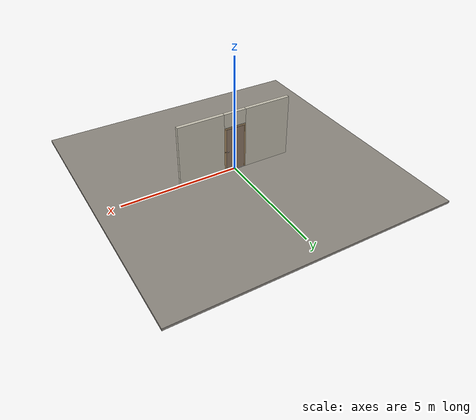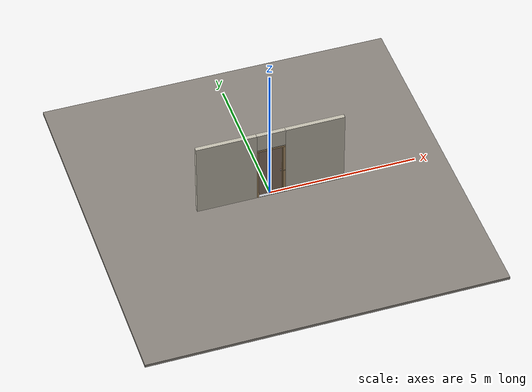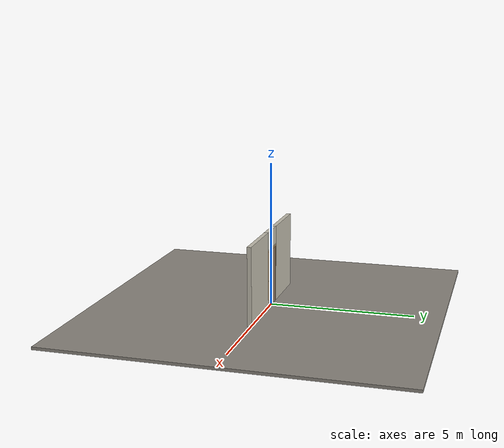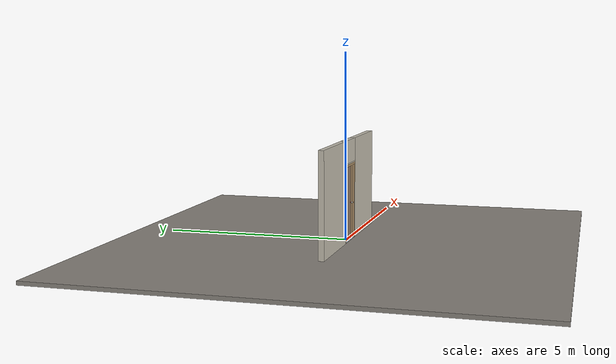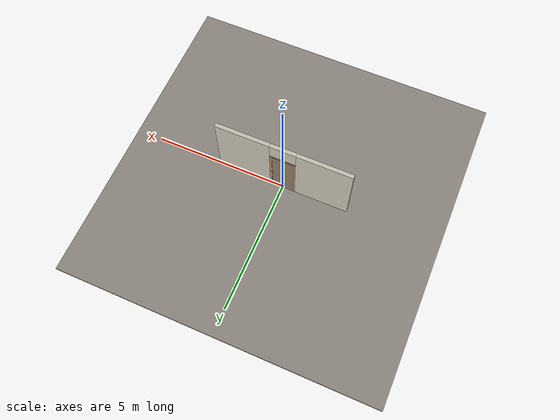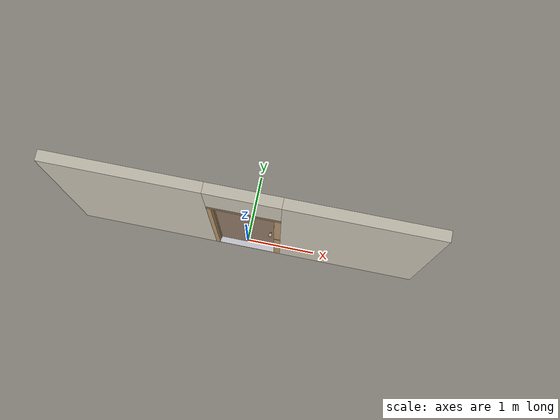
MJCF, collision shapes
<?xml version="1.0" ?>
<mujoco model="db0325_swing_single_minimal">
  <compiler angle="radian" meshdir="../../hardware" texturedir="../../textures" autolimits="true" inertiafromgeom="false"/>
  <option timestep="0.002" integrator="implicitfast" cone="elliptic" impratio="10" noslip_iterations="3">
    <flag multiccd="enable"/>
  </option>
  <size memory="16M"/>
  <default>
    <geom condim="4" solref="0.005 1" solimp="0.95 0.99 0.001"/>
    <joint solreflimit="0.005 1" solimplimit="0.95 0.99 0.001"/>
    <tendon solreflimit="0.005 1"/>
    <equality solref="0.002 1"/>
  </default>
  <visual>
    <headlight ambient="0.4 0.4 0.4" diffuse="0.7 0.7 0.7" specular="0.2 0.2 0.2"/>
    <quality shadowsize="4096"/>
    <map znear="0.01" zfar="60"/>
  </visual>
  <asset>
    <mesh name="knob_0ccd68d739" file="knob_0ccd68d739.obj"/>
    <material name="mat_floor" rgba="0.55 0.53 0.5 1" specular="0.2" shininess="0.15" reflectance="0"/>
    <material name="mat_wall" rgba="0.78 0.76 0.7 1" specular="0.2" shininess="0.1" reflectance="0"/>
    <material name="mat_hinge" rgba="0.55 0.56 0.58 1" specular="0.8" shininess="0.55" reflectance="0.4"/>
    <material name="mat_leaf" rgba="0.56 0.475 0.4 1" specular="0.2" shininess="0.5" reflectance="0"/>
    <material name="mat_leaf_panel" rgba="0.515 0.437 0.368 1" specular="0.2" shininess="0.5" reflectance="0"/>
    <material name="mat_button" rgba="0.7 0.6 0.3 1" specular="0.8" shininess="0.7" reflectance="0.4"/>
    <material name="mat_op_hpl" rgba="0.75 0.75 0.72 1" specular="0.2" shininess="0.65" reflectance="0"/>
    <material name="mat_trim" rgba="0.85 0.66 0.3 1" specular="0.8" shininess="0.75" reflectance="0.4"/>
    <material name="mat_bolt" rgba="0.75 0.76 0.77 1" specular="0.8" shininess="0.65" reflectance="0.4"/>
    <material name="mat_frame" rgba="0.7 0.58 0.42 1" specular="0.2" shininess="0.5" reflectance="0"/>
    <material name="mat_seal" rgba="0.1 0.1 0.1 1" specular="0.2" shininess="0.1" reflectance="0"/>
    <material name="mat_threshold" rgba="0.8 0.81 0.83 1" specular="0.8" shininess="0.6" reflectance="0.4"/>
    <texture name="skybox" type="skybox" builtin="gradient" rgb1="0.6 0.7 0.85" rgb2="0.9 0.92 0.95" width="256" height="256"/>
  </asset>
  <worldbody>
    <light name="sun" pos="1.5 -2.5 4" dir="-0.3 0.5 -0.8" directional="true" diffuse="0.8 0.8 0.8" specular="0.3 0.3 0.3" castshadow="true"/>
    <light name="fill" pos="-1.5 2.5 3" dir="0.3 -0.5 -0.7" directional="true" diffuse="0.35 0.35 0.4" castshadow="false"/>
    <camera name="robot_view" pos="0 -2.538625 1.698475" xyaxes="1 0 0 0 0.26963 0.962964" fovy="52"/>
    <camera name="far_view" pos="0 2.457625 1.698475" xyaxes="-1 0 0 0 -0.26963 0.962964" fovy="52"/>
    <camera name="iso" pos="1.898575 -2.138925 2.098175" xyaxes="0.741536 0.670913 0 -0.242917 0.268487 0.932151" fovy="46"/>
    <camera name="detail_handle" pos="0.5305 -0.87125 1.245" xyaxes="0.97561 0.219512 0 -0.070934 0.315262 0.94635" fovy="38"/>
    <geom name="floor" type="box" size="6 6 0.05" pos="0 0 -0.05" material="mat_floor" group="0" contype="1" conaffinity="1" friction="0.8 0.005 0.0001" density="2400"/>
    <geom name="wall_left" type="box" size="1.01475 0.0725 1.35" pos="-1.48525 -0.0405 1.35" material="mat_wall" group="0" contype="1" conaffinity="1" friction="0.6 0.005 0.0001" density="800"/>
    <geom name="wall_right" type="box" size="0.99975 0.0725 1.35" pos="1.50025 -0.0405 1.35" material="mat_wall" group="0" contype="1" conaffinity="1" friction="0.6 0.005 0.0001" density="800"/>
    <geom name="wall_header" type="box" size="0.4855 0.0725 0.306" pos="0.015 -0.0405 2.394" material="mat_wall" group="0" contype="1" conaffinity="1" friction="0.6 0.005 0.0001" density="800"/>
    <geom name="jamb_hinge" type="box" size="0.03 0.0725 0.999" pos="-0.4405 -0.0405 0.999" material="mat_frame" group="0" contype="1" conaffinity="1" friction="0.6 0.005 0.0001" density="750"/>
    <geom name="strike_965_wall_n" type="box" size="0.045 0.05325 0.015" pos="0.4555 -0.05975 0.965" material="mat_frame" group="0" contype="1" conaffinity="1" friction="0.6 0.005 0.0001" density="750"/>
    <geom name="strike_965_wall_p" type="box" size="0.045 0.008 0.015" pos="0.4555 0.0145 0.965" material="mat_frame" group="0" contype="1" conaffinity="1" friction="0.6 0.005 0.0001" density="750"/>
    <geom name="strike_965_ramp" type="box" size="0.045 0.016771 0.015" pos="0.458249 0.017375 0.965" quat="0.973249 0 0 -0.229753" material="mat_frame" group="0" contype="1" conaffinity="1" friction="0.12 0.005 0.0001" density="750"/>
    <geom name="strike_965_back" type="box" size="0.036 0.0065 0.015" pos="0.4645 0 0.965" material="mat_frame" group="0" contype="1" conaffinity="1" friction="0.6 0.005 0.0001" density="750"/>
    <geom name="jamb_strike_0" type="box" size="0.045 0.0725 0.475" pos="0.4555 -0.0405 0.475" material="mat_frame" group="0" contype="1" conaffinity="1" friction="0.6 0.005 0.0001" density="750"/>
    <geom name="jamb_strike_1" type="box" size="0.045 0.0725 0.509" pos="0.4555 -0.0405 1.489" material="mat_frame" group="0" contype="1" conaffinity="1" friction="0.6 0.005 0.0001" density="750"/>
    <geom name="jamb_head" type="box" size="0.4855 0.0725 0.03" pos="0.015 -0.0405 2.028" material="mat_frame" group="0" contype="1" conaffinity="1" friction="0.6 0.005 0.0001" density="750"/>
    <geom name="head_stud" type="box" size="0.4855 0.0725 0.015" pos="0.015 -0.0405 2.073" material="mat_wall" group="0" contype="1" conaffinity="1" friction="0.6 0.005 0.0001" density="500"/>
    <geom name="stop_hinge" type="box" size="0.0055 0.016 0.999" pos="-0.405 -0.0415 0.999" material="mat_frame" group="0" contype="1" conaffinity="1" friction="0.6 0.005 0.0001" density="750"/>
    <geom name="stop_strike" type="box" size="0.0055 0.016 0.999" pos="0.405 -0.0415 0.999" material="mat_frame" group="0" contype="1" conaffinity="1" friction="0.6 0.005 0.0001" density="750"/>
    <geom name="stop_head" type="box" size="0.4105 0.016 0.0055" pos="0 -0.0415 1.9925" material="mat_frame" group="0" contype="1" conaffinity="1" friction="0.6 0.005 0.0001" density="750"/>
    <geom name="threshold" type="box" size="0.4705 0.0725 0.0065" pos="0 -0.0405 0.0065" material="mat_threshold" group="0" contype="1" conaffinity="1" friction="0.5 0.005 0.0001" density="2700"/>
    <site name="approach_point" pos="0 -1.5 0" quat="1 0 0 0" size="0.05" rgba="0.2 0.9 0.2 0.5" group="4"/>
    <site name="goal_point" pos="0 1.5 0" quat="1 0 0 0" size="0.05" rgba="0.2 0.9 0.2 0.5" group="4"/>
    <site name="door_plane_center" pos="0 0 0.999" quat="1 0 0 0" size="0.02" rgba="0.2 0.9 0.2 0.5" group="4"/>
    <body name="leaf_riser" pos="-0.4105 0 0">
      <inertial pos="0 0 0" mass="0.01" quat="1 0 0 0" diaginertia="0.000001 0.000001 0.000001"/>
      <joint name="leaf_rise" type="slide" axis="0 0 1" limited="true" range="0 0.0176" damping="1" armature="0.5"/>
      <body name="leaf" pos="0 0 0">
        <inertial pos="0.4095 0 1.0003" mass="56.968616" quat="-0.5 0.5 0.5 0.5" diaginertia="3.149742573 18.372452618 21.498458267"/>
        <joint name="leaf_hinge" type="hinge" axis="0 0 1" pos="0.003 0.032 0" limited="true" range="0 2.443461" solreflimit="0.02 1" damping="0.206618" frictionloss="7.728704" armature="0.02"/>
        <geom name="leaf_slab" type="box" size="0.4065 0.025 0.9833" pos="0.4095 0 1.0003" material="mat_leaf" group="0" contype="1" conaffinity="1" friction="0.4 0.005 0.0001" density="1"/>
        <site name="leaf_edge_mid" pos="0.816 0 0.9833" quat="1 0 0 0" size="0.02" rgba="0.2 0.9 0.2 0.5" group="4"/>
        <body name="leaf_handle" pos="0.761 0 0.965">
          <inertial pos="0 0 0" mass="1.104803" quat="0.5 0.5 0.5 0.5" diaginertia="0.000297843 0.004802623 0.004802623"/>
          <joint name="leaf_handle_hinge" type="hinge" axis="0 -1 0" limited="true" range="0 0.85" damping="0.128368" frictionloss="0.032" stiffness="0.4" springref="-0.5" armature="0.01"/>
          <geom name="leaf_handle_knob_n" type="mesh" mesh="knob_0ccd68d739" pos="0 -0.025 0" quat="0.707107 0.707107 0 0" material="mat_op_hpl" group="1" contype="0" conaffinity="0" density="3000"/>
          <geom name="leaf_handle_knob_col_n" type="sphere" size="0.02475" pos="0 -0.07125 0" material="mat_op_hpl" group="0" contype="1" conaffinity="1" friction="0.9 0.01 0.0001" density="3000"/>
          <geom name="leaf_handle_knob_neck_n" type="cylinder" size="0.011 0.012" pos="0 -0.037 0" quat="0.707107 -0.707107 0 0" material="mat_op_hpl" group="3" contype="1" conaffinity="1" rgba="0.8 0.3 0.3 0.25" friction="0.6 0.005 0.0001" density="3000"/>
          <geom name="leaf_handle_knob_p" type="mesh" mesh="knob_0ccd68d739" pos="0 0.025 0" quat="-0.707107 0.707107 0 0" material="mat_op_hpl" group="1" contype="0" conaffinity="0" density="3000"/>
          <geom name="leaf_handle_knob_col_p" type="sphere" size="0.02475" pos="0 0.07125 0" material="mat_op_hpl" group="0" contype="1" conaffinity="1" friction="0.9 0.01 0.0001" density="3000"/>
          <geom name="leaf_handle_knob_neck_p" type="cylinder" size="0.011 0.012" pos="0 0.037 0" quat="0.707107 -0.707107 0 0" material="mat_op_hpl" group="3" contype="1" conaffinity="1" rgba="0.8 0.3 0.3 0.25" friction="0.6 0.005 0.0001" density="3000"/>
          <site name="leaf_handle_grip_n" pos="0 -0.07125 0" quat="1 0 0 0" size="0.012" rgba="0.2 0.9 0.2 0.5" group="4"/>
          <site name="leaf_handle_grip_p" pos="0 0.07125 0" quat="1 0 0 0" size="0.012" rgba="0.2 0.9 0.2 0.5" group="4"/>
        </body>
        <body name="leaf_latch_bolt" pos="0.816 0 0.965">
          <inertial pos="-0.008 0 0" mass="0.027149" quat="0 0 0.707107 0.707107" diaginertia="0.000000328 0.000003943 0.000003943"/>
          <joint name="leaf_latch_bolt_slide" type="slide" axis="-1 0 0" limited="true" range="0 0.014" damping="2" frictionloss="0.3" stiffness="400" springref="-0.01" armature="0.1"/>
          <geom name="leaf_latch_bolt_capsule" type="capsule" size="0.005 0.017" pos="-0.008 0 0" quat="0.707107 0 0.707107 0" material="mat_bolt" group="0" contype="1" conaffinity="1" friction="0.2 0.005 0.0001" density="8500"/>
        </body>
      </body>
    </body>
  </worldbody>
  <tendon>
    <fixed name="leaf_latch_bolt_coupling" limited="true" range="0 10">
      <joint joint="leaf_latch_bolt_slide" coef="1"/>
      <joint joint="leaf_handle_hinge" coef="-0.018667"/>
    </fixed>
  </tendon>
  <equality>
    <joint name="leaf_rise_couple" joint1="leaf_rise" joint2="leaf_hinge" polycoef="0 0.005093 0 0 0" active="true"/>
  </equality>
  <sensor>
    <jointpos name="leaf_hinge_pos" joint="leaf_hinge"/>
    <jointvel name="leaf_hinge_vel" joint="leaf_hinge"/>
    <jointpos name="leaf_handle_hinge_pos" joint="leaf_handle_hinge"/>
    <jointvel name="leaf_handle_hinge_vel" joint="leaf_handle_hinge"/>
    <jointpos name="leaf_latch_bolt_slide_pos" joint="leaf_latch_bolt_slide"/>
    <jointvel name="leaf_latch_bolt_slide_vel" joint="leaf_latch_bolt_slide"/>
  </sensor>
</mujoco>
